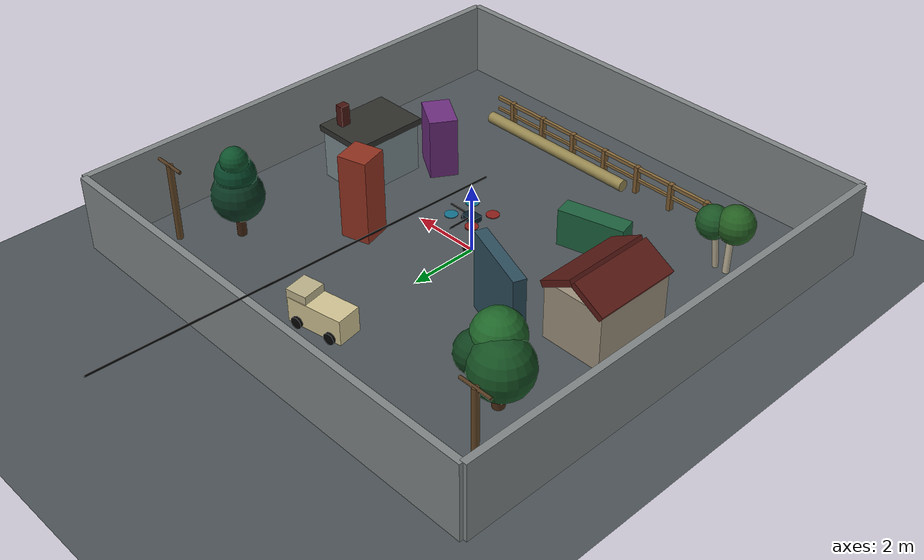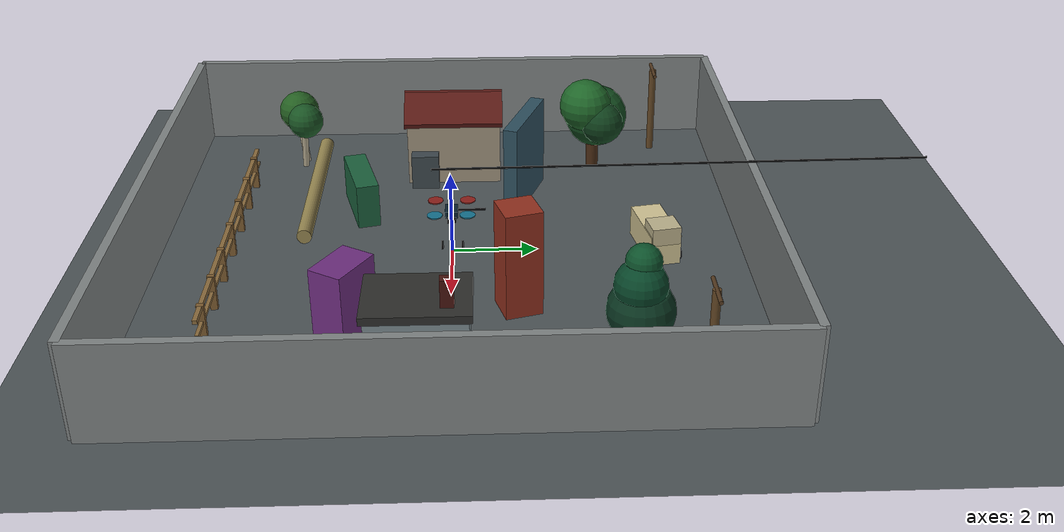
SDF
<?xml version="1.0" ?>
<sdf version="1.8">
  <world name="drone_reconstruction_world">
    <plugin filename="libignition-gazebo-physics-system.so" name="ignition::gazebo::systems::Physics"/>
    <plugin filename="libignition-gazebo-user-commands-system.so" name="ignition::gazebo::systems::UserCommands"/>
    <plugin filename="libignition-gazebo-scene-broadcaster-system.so" name="ignition::gazebo::systems::SceneBroadcaster"/>
    <plugin filename="libignition-gazebo-sensors-system.so" name="ignition::gazebo::systems::Sensors">
      <render_engine>ogre2</render_engine>
    </plugin>

    <gravity>0 0 -9.8</gravity>

    <light name="sun" type="directional">
      <pose>-3 4 10 0 0 0</pose>
      <diffuse>0.85 0.82 0.76 1</diffuse>
      <specular>0.25 0.25 0.25 1</specular>
      <direction>-0.45 0.35 -1</direction>
    </light>

    <model name="floor_grid">
      <static>true</static>
      <link name="link">
        <collision name="collision">
          <geometry>
            <plane>
              <normal>0 0 1</normal>
              <size>28 28</size>
            </plane>
          </geometry>
        </collision>
        <visual name="visual">
          <geometry>
            <plane>
              <normal>0 0 1</normal>
              <size>28 28</size>
            </plane>
          </geometry>
          <material>
            <ambient>0.30 0.33 0.34 1</ambient>
            <diffuse>0.30 0.33 0.34 1</diffuse>
          </material>
        </visual>
      </link>
    </model>

    <model name="mapping_drone_proxy">
      <pose>0 0 0.16 0 0 0</pose>

      <link name="base_link">
        <inertial>
          <mass>4.0</mass>
          <inertia>
            <ixx>0.07</ixx>
            <iyy>0.07</iyy>
            <izz>0.10</izz>
          </inertia>
        </inertial>
        <collision name="ground_proxy_collision">
          <geometry>
            <box>
              <size>0.50 0.36 0.12</size>
            </box>
          </geometry>
        </collision>
        <visual name="flight_controller">
          <pose>0 0 0.90 0 0 0</pose>
          <geometry>
            <box>
              <size>0.42 0.30 0.16</size>
            </box>
          </geometry>
          <material>
            <ambient>0.04 0.13 0.18 1</ambient>
            <diffuse>0.04 0.13 0.18 1</diffuse>
          </material>
        </visual>
        <visual name="front_arm">
          <pose>0.38 0 0.94 0 1.5708 0</pose>
          <geometry>
            <cylinder>
              <radius>0.025</radius>
              <length>0.82</length>
            </cylinder>
          </geometry>
          <material>
            <ambient>0.02 0.02 0.025 1</ambient>
            <diffuse>0.02 0.02 0.025 1</diffuse>
          </material>
        </visual>
        <visual name="side_arm">
          <pose>0 0.38 0.94 1.5708 0 0</pose>
          <geometry>
            <cylinder>
              <radius>0.025</radius>
              <length>0.82</length>
            </cylinder>
          </geometry>
          <material>
            <ambient>0.02 0.02 0.025 1</ambient>
            <diffuse>0.02 0.02 0.025 1</diffuse>
          </material>
        </visual>
        <visual name="front_left_rotor">
          <pose>0.38 0.38 0.99 0 0 0</pose>
          <geometry>
            <cylinder>
              <radius>0.18</radius>
              <length>0.025</length>
            </cylinder>
          </geometry>
          <material>
            <ambient>0.08 0.45 0.56 1</ambient>
            <diffuse>0.08 0.45 0.56 1</diffuse>
          </material>
        </visual>
        <visual name="front_right_rotor">
          <pose>0.38 -0.38 0.99 0 0 0</pose>
          <geometry>
            <cylinder>
              <radius>0.18</radius>
              <length>0.025</length>
            </cylinder>
          </geometry>
          <material>
            <ambient>0.08 0.45 0.56 1</ambient>
            <diffuse>0.08 0.45 0.56 1</diffuse>
          </material>
        </visual>
        <visual name="rear_left_rotor">
          <pose>-0.38 0.38 0.99 0 0 0</pose>
          <geometry>
            <cylinder>
              <radius>0.18</radius>
              <length>0.025</length>
            </cylinder>
          </geometry>
          <material>
            <ambient>0.55 0.12 0.10 1</ambient>
            <diffuse>0.55 0.12 0.10 1</diffuse>
          </material>
        </visual>
        <visual name="rear_right_rotor">
          <pose>-0.38 -0.38 0.99 0 0 0</pose>
          <geometry>
            <cylinder>
              <radius>0.18</radius>
              <length>0.025</length>
            </cylinder>
          </geometry>
          <material>
            <ambient>0.55 0.12 0.10 1</ambient>
            <diffuse>0.55 0.12 0.10 1</diffuse>
          </material>
        </visual>
        <visual name="sensor_pod">
          <pose>0.24 0 0.80 0 0 0</pose>
          <geometry>
            <box>
              <size>0.16 0.20 0.10</size>
            </box>
          </geometry>
          <material>
            <ambient>0.02 0.02 0.02 1</ambient>
            <diffuse>0.02 0.02 0.02 1</diffuse>
          </material>
        </visual>

        <sensor name="mapping_lidar" type="gpu_lidar">
          <pose>0.24 0 0.82 0 0 0</pose>
          <topic>/scan</topic>
          <update_rate>12</update_rate>
          <always_on>true</always_on>
          <visualize>true</visualize>
          <ray>
            <scan>
              <horizontal>
                <samples>540</samples>
                <resolution>1</resolution>
                <min_angle>-2.35619</min_angle>
                <max_angle>2.35619</max_angle>
              </horizontal>
            </scan>
            <range>
              <min>0.12</min>
              <max>10.0</max>
              <resolution>0.01</resolution>
            </range>
          </ray>
        </sensor>
      </link>

      <link name="left_proxy_wheel">
        <pose>0 0.24 0 1.5708 0 0</pose>
        <inertial>
          <mass>0.35</mass>
          <inertia>
            <ixx>0.001</ixx>
            <iyy>0.001</iyy>
            <izz>0.001</izz>
          </inertia>
        </inertial>
        <collision name="collision">
          <geometry>
            <cylinder>
              <radius>0.10</radius>
              <length>0.05</length>
            </cylinder>
          </geometry>
        </collision>
        <visual name="visual">
          <geometry>
            <cylinder>
              <radius>0.10</radius>
              <length>0.05</length>
            </cylinder>
          </geometry>
          <material>
            <ambient>0.015 0.015 0.015 1</ambient>
            <diffuse>0.015 0.015 0.015 1</diffuse>
          </material>
        </visual>
      </link>

      <link name="right_proxy_wheel">
        <pose>0 -0.24 0 1.5708 0 0</pose>
        <inertial>
          <mass>0.35</mass>
          <inertia>
            <ixx>0.001</ixx>
            <iyy>0.001</iyy>
            <izz>0.001</izz>
          </inertia>
        </inertial>
        <collision name="collision">
          <geometry>
            <cylinder>
              <radius>0.10</radius>
              <length>0.05</length>
            </cylinder>
          </geometry>
        </collision>
        <visual name="visual">
          <geometry>
            <cylinder>
              <radius>0.10</radius>
              <length>0.05</length>
            </cylinder>
          </geometry>
          <material>
            <ambient>0.015 0.015 0.015 1</ambient>
            <diffuse>0.015 0.015 0.015 1</diffuse>
          </material>
        </visual>
      </link>

      <joint name="left_proxy_wheel_joint" type="revolute">
        <parent>base_link</parent>
        <child>left_proxy_wheel</child>
        <axis>
          <xyz>0 1 0</xyz>
          <limit>
            <lower>-1e16</lower>
            <upper>1e16</upper>
          </limit>
        </axis>
      </joint>

      <joint name="right_proxy_wheel_joint" type="revolute">
        <parent>base_link</parent>
        <child>right_proxy_wheel</child>
        <axis>
          <xyz>0 1 0</xyz>
          <limit>
            <lower>-1e16</lower>
            <upper>1e16</upper>
          </limit>
        </axis>
      </joint>

      <plugin filename="libignition-gazebo-diff-drive-system.so" name="ignition::gazebo::systems::DiffDrive">
        <left_joint>left_proxy_wheel_joint</left_joint>
        <right_joint>right_proxy_wheel_joint</right_joint>
        <wheel_separation>0.48</wheel_separation>
        <wheel_radius>0.10</wheel_radius>
        <topic>/cmd_vel</topic>
        <odom_topic>/odom</odom_topic>
        <odom_publish_frequency>25</odom_publish_frequency>
        <tf_topic>/tf</tf_topic>
        <frame_id>odom</frame_id>
        <child_frame_id>base_link</child_frame_id>
      </plugin>
    </model>

    <model name="north_boundary">
      <static>true</static>
      <pose>0 7 1.1 0 0 0</pose>
      <link name="link">
        <collision name="collision"><geometry><box><size>14 0.20 2.2</size></box></geometry></collision>
        <visual name="visual">
          <geometry><box><size>14 0.20 2.2</size></box></geometry>
          <material><ambient>0.50 0.52 0.52 1</ambient><diffuse>0.50 0.52 0.52 1</diffuse></material>
        </visual>
      </link>
    </model>

    <model name="south_boundary">
      <static>true</static>
      <pose>0 -7 1.1 0 0 0</pose>
      <link name="link">
        <collision name="collision"><geometry><box><size>14 0.20 2.2</size></box></geometry></collision>
        <visual name="visual">
          <geometry><box><size>14 0.20 2.2</size></box></geometry>
          <material><ambient>0.50 0.52 0.52 1</ambient><diffuse>0.50 0.52 0.52 1</diffuse></material>
        </visual>
      </link>
    </model>

    <model name="east_boundary">
      <static>true</static>
      <pose>7 0 1.1 0 0 0</pose>
      <link name="link">
        <collision name="collision"><geometry><box><size>0.20 14 2.2</size></box></geometry></collision>
        <visual name="visual">
          <geometry><box><size>0.20 14 2.2</size></box></geometry>
          <material><ambient>0.50 0.52 0.52 1</ambient><diffuse>0.50 0.52 0.52 1</diffuse></material>
        </visual>
      </link>
    </model>

    <model name="west_boundary">
      <static>true</static>
      <pose>-7 0 1.1 0 0 0</pose>
      <link name="link">
        <collision name="collision"><geometry><box><size>0.20 14 2.2</size></box></geometry></collision>
        <visual name="visual">
          <geometry><box><size>0.20 14 2.2</size></box></geometry>
          <material><ambient>0.50 0.52 0.52 1</ambient><diffuse>0.50 0.52 0.52 1</diffuse></material>
        </visual>
      </link>
    </model>

    <model name="inspection_tower">
      <static>true</static>
      <pose>2.6 1.5 1.25 0 0 0.28</pose>
      <link name="link">
        <collision name="collision"><geometry><box><size>0.85 0.85 2.5</size></box></geometry></collision>
        <visual name="visual">
          <geometry><box><size>0.85 0.85 2.5</size></box></geometry>
          <material><ambient>0.57 0.19 0.12 1</ambient><diffuse>0.57 0.19 0.12 1</diffuse></material>
        </visual>
      </link>
    </model>

    <model name="damaged_wall_panel">
      <static>true</static>
      <pose>-2.8 1.8 1.15 0 0 -0.35</pose>
      <link name="link">
        <collision name="collision"><geometry><box><size>2.2 0.35 2.3</size></box></geometry></collision>
        <visual name="visual">
          <geometry><box><size>2.2 0.35 2.3</size></box></geometry>
          <material><ambient>0.18 0.31 0.37 1</ambient><diffuse>0.18 0.31 0.37 1</diffuse></material>
        </visual>
      </link>
    </model>

    <model name="low_equipment_rack">
      <static>true</static>
      <pose>-2.2 -2.3 0.55 0 0 0.25</pose>
      <link name="link">
        <collision name="collision"><geometry><box><size>1.9 0.55 1.1</size></box></geometry></collision>
        <visual name="visual">
          <geometry><box><size>1.9 0.55 1.1</size></box></geometry>
          <material><ambient>0.11 0.38 0.24 1</ambient><diffuse>0.11 0.38 0.24 1</diffuse></material>
        </visual>
      </link>
    </model>

    <model name="overhead_pipe">
      <static>true</static>
      <pose>0.0 -3.1 1.75 1.5708 0 1.5708</pose>
      <link name="link">
        <collision name="collision">
          <geometry>
            <cylinder>
              <radius>0.16</radius>
              <length>4.8</length>
            </cylinder>
          </geometry>
        </collision>
        <visual name="visual">
          <geometry>
            <cylinder>
              <radius>0.16</radius>
              <length>4.8</length>
            </cylinder>
          </geometry>
          <material><ambient>0.58 0.52 0.31 1</ambient><diffuse>0.58 0.52 0.31 1</diffuse></material>
        </visual>
      </link>
    </model>

    <model name="reconstruction_target">
      <static>true</static>
      <pose>3.6 -2.2 0.9 0 0 -0.55</pose>
      <link name="link">
        <collision name="collision"><geometry><box><size>1.2 0.80 1.8</size></box></geometry></collision>
        <visual name="visual">
          <geometry><box><size>1.2 0.80 1.8</size></box></geometry>
          <material><ambient>0.43 0.18 0.50 1</ambient><diffuse>0.43 0.18 0.50 1</diffuse></material>
        </visual>
      </link>
    </model>

    <model name="front_yard_maple">
      <static>true</static>
      <pose>-4.7 3.7 0 0 0 0</pose>
      <link name="trunk">
        <pose>0 0 0.55 0 0 0.12</pose>
        <collision name="collision"><geometry><cylinder><radius>0.16</radius><length>1.1</length></cylinder></geometry></collision>
        <visual name="visual">
          <geometry><cylinder><radius>0.16</radius><length>1.1</length></cylinder></geometry>
          <material><ambient>0.29 0.17 0.08 1</ambient><diffuse>0.29 0.17 0.08 1</diffuse></material>
        </visual>
      </link>
      <link name="lower_canopy">
        <pose>-0.18 0.10 1.35 0 0 0</pose>
        <collision name="collision"><geometry><sphere><radius>0.82</radius></sphere></geometry></collision>
        <visual name="visual">
          <geometry><sphere><radius>0.82</radius></sphere></geometry>
          <material><ambient>0.08 0.31 0.13 1</ambient><diffuse>0.08 0.31 0.13 1</diffuse></material>
        </visual>
      </link>
      <link name="upper_canopy">
        <pose>0.24 -0.22 1.82 0 0 0</pose>
        <collision name="collision"><geometry><sphere><radius>0.68</radius></sphere></geometry></collision>
        <visual name="visual">
          <geometry><sphere><radius>0.68</radius></sphere></geometry>
          <material><ambient>0.12 0.40 0.16 1</ambient><diffuse>0.12 0.40 0.16 1</diffuse></material>
        </visual>
      </link>
      <link name="side_canopy">
        <pose>0.52 0.20 1.42 0 0 0</pose>
        <collision name="collision"><geometry><sphere><radius>0.55</radius></sphere></geometry></collision>
        <visual name="visual">
          <geometry><sphere><radius>0.55</radius></sphere></geometry>
          <material><ambient>0.06 0.25 0.11 1</ambient><diffuse>0.06 0.25 0.11 1</diffuse></material>
        </visual>
      </link>
    </model>

    <model name="sidewalk_pine">
      <static>true</static>
      <pose>4.8 3.9 0 0 0 0</pose>
      <link name="trunk">
        <pose>0 0 0.75 0 0 -0.08</pose>
        <collision name="collision"><geometry><cylinder><radius>0.13</radius><length>1.5</length></cylinder></geometry></collision>
        <visual name="visual">
          <geometry><cylinder><radius>0.13</radius><length>1.5</length></cylinder></geometry>
          <material><ambient>0.25 0.14 0.07 1</ambient><diffuse>0.25 0.14 0.07 1</diffuse></material>
        </visual>
      </link>
      <link name="lower_needles">
        <pose>0 0 1.25 0 0 0</pose>
        <collision name="collision"><geometry><sphere><radius>0.72</radius></sphere></geometry></collision>
        <visual name="visual">
          <geometry><sphere><radius>0.72</radius></sphere></geometry>
          <material><ambient>0.04 0.21 0.13 1</ambient><diffuse>0.04 0.21 0.13 1</diffuse></material>
        </visual>
      </link>
      <link name="middle_needles">
        <pose>0.05 -0.03 1.85 0 0 0</pose>
        <collision name="collision"><geometry><sphere><radius>0.56</radius></sphere></geometry></collision>
        <visual name="visual">
          <geometry><sphere><radius>0.56</radius></sphere></geometry>
          <material><ambient>0.03 0.27 0.16 1</ambient><diffuse>0.03 0.27 0.16 1</diffuse></material>
        </visual>
      </link>
      <link name="top_needles">
        <pose>-0.04 0.02 2.34 0 0 0</pose>
        <collision name="collision"><geometry><sphere><radius>0.38</radius></sphere></geometry></collision>
        <visual name="visual">
          <geometry><sphere><radius>0.38</radius></sphere></geometry>
          <material><ambient>0.05 0.32 0.17 1</ambient><diffuse>0.05 0.32 0.17 1</diffuse></material>
        </visual>
      </link>
    </model>

    <model name="corner_birch_cluster">
      <static>true</static>
      <pose>-5.0 -4.1 0 0 0 0</pose>
      <link name="trunk_a">
        <pose>-0.18 0 0.62 0.08 0.03 0</pose>
        <collision name="collision"><geometry><cylinder><radius>0.09</radius><length>1.25</length></cylinder></geometry></collision>
        <visual name="visual"><geometry><cylinder><radius>0.09</radius><length>1.25</length></cylinder></geometry><material><ambient>0.72 0.68 0.58 1</ambient><diffuse>0.72 0.68 0.58 1</diffuse></material></visual>
      </link>
      <link name="trunk_b">
        <pose>0.18 0.08 0.58 -0.05 0.08 0</pose>
        <collision name="collision"><geometry><cylinder><radius>0.08</radius><length>1.15</length></cylinder></geometry></collision>
        <visual name="visual"><geometry><cylinder><radius>0.08</radius><length>1.15</length></cylinder></geometry><material><ambient>0.70 0.66 0.56 1</ambient><diffuse>0.70 0.66 0.56 1</diffuse></material></visual>
      </link>
      <link name="canopy_a">
        <pose>-0.25 -0.06 1.45 0 0 0</pose>
        <collision name="collision"><geometry><sphere><radius>0.52</radius></sphere></geometry></collision>
        <visual name="visual"><geometry><sphere><radius>0.52</radius></sphere></geometry><material><ambient>0.14 0.37 0.13 1</ambient><diffuse>0.14 0.37 0.13 1</diffuse></material></visual>
      </link>
      <link name="canopy_b">
        <pose>0.28 0.16 1.38 0 0 0</pose>
        <collision name="collision"><geometry><sphere><radius>0.46</radius></sphere></geometry></collision>
        <visual name="visual"><geometry><sphere><radius>0.46</radius></sphere></geometry><material><ambient>0.10 0.33 0.14 1</ambient><diffuse>0.10 0.33 0.14 1</diffuse></material></visual>
      </link>
    </model>

    <model name="row_house_west">
      <static>true</static>
      <pose>-4.6 0.0 0 0 0 1.5708</pose>
      <link name="body">
        <pose>0 0 0.85 0 0 0</pose>
        <collision name="collision"><geometry><box><size>2.4 1.8 1.7</size></box></geometry></collision>
        <visual name="visual"><geometry><box><size>2.4 1.8 1.7</size></box></geometry><material><ambient>0.62 0.57 0.49 1</ambient><diffuse>0.62 0.57 0.49 1</diffuse></material></visual>
      </link>
      <link name="roof_a">
        <pose>0 -0.48 1.88 0.52 0 0</pose>
        <collision name="collision"><geometry><box><size>2.55 1.05 0.18</size></box></geometry></collision>
        <visual name="visual"><geometry><box><size>2.55 1.05 0.18</size></box></geometry><material><ambient>0.35 0.10 0.08 1</ambient><diffuse>0.35 0.10 0.08 1</diffuse></material></visual>
      </link>
      <link name="roof_b">
        <pose>0 0.48 1.88 -0.52 0 0</pose>
        <collision name="collision"><geometry><box><size>2.55 1.05 0.18</size></box></geometry></collision>
        <visual name="visual"><geometry><box><size>2.55 1.05 0.18</size></box></geometry><material><ambient>0.35 0.10 0.08 1</ambient><diffuse>0.35 0.10 0.08 1</diffuse></material></visual>
      </link>
      <link name="porch">
        <pose>-0.75 -1.08 0.45 0 0 0</pose>
        <collision name="collision"><geometry><box><size>0.7 0.36 0.9</size></box></geometry></collision>
        <visual name="visual"><geometry><box><size>0.7 0.36 0.9</size></box></geometry><material><ambient>0.24 0.28 0.30 1</ambient><diffuse>0.24 0.28 0.30 1</diffuse></material></visual>
      </link>
    </model>

    <model name="row_house_east">
      <static>true</static>
      <pose>4.7 -0.6 0 0 0 -1.5708</pose>
      <link name="body">
        <pose>0 0 0.72 0 0 0</pose>
        <collision name="collision"><geometry><box><size>2.1 1.55 1.45</size></box></geometry></collision>
        <visual name="visual"><geometry><box><size>2.1 1.55 1.45</size></box></geometry><material><ambient>0.48 0.54 0.56 1</ambient><diffuse>0.48 0.54 0.56 1</diffuse></material></visual>
      </link>
      <link name="flat_roof">
        <pose>0 0 1.56 0 0 0</pose>
        <collision name="collision"><geometry><box><size>2.25 1.7 0.18</size></box></geometry></collision>
        <visual name="visual"><geometry><box><size>2.25 1.7 0.18</size></box></geometry><material><ambient>0.18 0.18 0.17 1</ambient><diffuse>0.18 0.18 0.17 1</diffuse></material></visual>
      </link>
      <link name="chimney">
        <pose>-0.62 0.42 1.92 0 0 0</pose>
        <collision name="collision"><geometry><box><size>0.28 0.24 0.70</size></box></geometry></collision>
        <visual name="visual"><geometry><box><size>0.28 0.24 0.70</size></box></geometry><material><ambient>0.28 0.08 0.06 1</ambient><diffuse>0.28 0.08 0.06 1</diffuse></material></visual>
      </link>
    </model>

    <model name="parked_service_van">
      <static>true</static>
      <pose>0.2 4.8 0 0 0 0.18</pose>
      <link name="body">
        <pose>0 0 0.45 0 0 0</pose>
        <collision name="collision"><geometry><box><size>1.65 0.72 0.72</size></box></geometry></collision>
        <visual name="visual"><geometry><box><size>1.65 0.72 0.72</size></box></geometry><material><ambient>0.82 0.77 0.58 1</ambient><diffuse>0.82 0.77 0.58 1</diffuse></material></visual>
      </link>
      <link name="cab">
        <pose>0.55 0 0.83 0 0 0</pose>
        <collision name="collision"><geometry><box><size>0.62 0.68 0.42</size></box></geometry></collision>
        <visual name="visual"><geometry><box><size>0.62 0.68 0.42</size></box></geometry><material><ambient>0.74 0.70 0.55 1</ambient><diffuse>0.74 0.70 0.55 1</diffuse></material></visual>
      </link>
      <link name="front_wheel">
        <pose>0.52 0.41 0.20 1.5708 0 0</pose>
        <collision name="collision"><geometry><cylinder><radius>0.16</radius><length>0.08</length></cylinder></geometry></collision>
        <visual name="visual"><geometry><cylinder><radius>0.16</radius><length>0.08</length></cylinder></geometry><material><ambient>0.02 0.02 0.02 1</ambient><diffuse>0.02 0.02 0.02 1</diffuse></material></visual>
      </link>
      <link name="rear_wheel">
        <pose>-0.52 0.41 0.20 1.5708 0 0</pose>
        <collision name="collision"><geometry><cylinder><radius>0.16</radius><length>0.08</length></cylinder></geometry></collision>
        <visual name="visual"><geometry><cylinder><radius>0.16</radius><length>0.08</length></cylinder></geometry><material><ambient>0.02 0.02 0.02 1</ambient><diffuse>0.02 0.02 0.02 1</diffuse></material></visual>
      </link>
    </model>

    <model name="backyard_fence">
      <static>true</static>
      <pose>0 -5.2 0 0 0 0</pose>
      <link name="rail_top">
        <pose>0 0 0.78 0 0 0</pose>
        <collision name="collision"><geometry><box><size>8.4 0.10 0.10</size></box></geometry></collision>
        <visual name="visual"><geometry><box><size>8.4 0.10 0.10</size></box></geometry><material><ambient>0.54 0.42 0.24 1</ambient><diffuse>0.54 0.42 0.24 1</diffuse></material></visual>
      </link>
      <link name="rail_mid">
        <pose>0 0 0.42 0 0 0</pose>
        <collision name="collision"><geometry><box><size>8.4 0.08 0.08</size></box></geometry></collision>
        <visual name="visual"><geometry><box><size>8.4 0.08 0.08</size></box></geometry><material><ambient>0.54 0.42 0.24 1</ambient><diffuse>0.54 0.42 0.24 1</diffuse></material></visual>
      </link>
      <link name="post_1"><pose>-3.6 0 0.42 0 0 0</pose><collision name="collision"><geometry><box><size>0.12 0.16 0.84</size></box></geometry></collision><visual name="visual"><geometry><box><size>0.12 0.16 0.84</size></box></geometry><material><ambient>0.49 0.36 0.19 1</ambient><diffuse>0.49 0.36 0.19 1</diffuse></material></visual></link>
      <link name="post_2"><pose>-2.4 0 0.42 0 0 0</pose><collision name="collision"><geometry><box><size>0.12 0.16 0.84</size></box></geometry></collision><visual name="visual"><geometry><box><size>0.12 0.16 0.84</size></box></geometry><material><ambient>0.49 0.36 0.19 1</ambient><diffuse>0.49 0.36 0.19 1</diffuse></material></visual></link>
      <link name="post_3"><pose>-1.2 0 0.42 0 0 0</pose><collision name="collision"><geometry><box><size>0.12 0.16 0.84</size></box></geometry></collision><visual name="visual"><geometry><box><size>0.12 0.16 0.84</size></box></geometry><material><ambient>0.49 0.36 0.19 1</ambient><diffuse>0.49 0.36 0.19 1</diffuse></material></visual></link>
      <link name="post_4"><pose>0 0 0.42 0 0 0</pose><collision name="collision"><geometry><box><size>0.12 0.16 0.84</size></box></geometry></collision><visual name="visual"><geometry><box><size>0.12 0.16 0.84</size></box></geometry><material><ambient>0.49 0.36 0.19 1</ambient><diffuse>0.49 0.36 0.19 1</diffuse></material></visual></link>
      <link name="post_5"><pose>1.2 0 0.42 0 0 0</pose><collision name="collision"><geometry><box><size>0.12 0.16 0.84</size></box></geometry></collision><visual name="visual"><geometry><box><size>0.12 0.16 0.84</size></box></geometry><material><ambient>0.49 0.36 0.19 1</ambient><diffuse>0.49 0.36 0.19 1</diffuse></material></visual></link>
      <link name="post_6"><pose>2.4 0 0.42 0 0 0</pose><collision name="collision"><geometry><box><size>0.12 0.16 0.84</size></box></geometry></collision><visual name="visual"><geometry><box><size>0.12 0.16 0.84</size></box></geometry><material><ambient>0.49 0.36 0.19 1</ambient><diffuse>0.49 0.36 0.19 1</diffuse></material></visual></link>
      <link name="post_7"><pose>3.6 0 0.42 0 0 0</pose><collision name="collision"><geometry><box><size>0.12 0.16 0.84</size></box></geometry></collision><visual name="visual"><geometry><box><size>0.12 0.16 0.84</size></box></geometry><material><ambient>0.49 0.36 0.19 1</ambient><diffuse>0.49 0.36 0.19 1</diffuse></material></visual></link>
    </model>

    <model name="utility_line">
      <static>true</static>
      <pose>0 0 0 0 0 0</pose>
      <link name="pole_a">
        <pose>-5.7 5.4 1.15 0 0 0</pose>
        <collision name="collision"><geometry><cylinder><radius>0.09</radius><length>2.3</length></cylinder></geometry></collision>
        <visual name="visual"><geometry><cylinder><radius>0.09</radius><length>2.3</length></cylinder></geometry><material><ambient>0.38 0.27 0.14 1</ambient><diffuse>0.38 0.27 0.14 1</diffuse></material></visual>
      </link>
      <link name="pole_b">
        <pose>5.8 5.2 1.15 0 0 0</pose>
        <collision name="collision"><geometry><cylinder><radius>0.09</radius><length>2.3</length></cylinder></geometry></collision>
        <visual name="visual"><geometry><cylinder><radius>0.09</radius><length>2.3</length></cylinder></geometry><material><ambient>0.38 0.27 0.14 1</ambient><diffuse>0.38 0.27 0.14 1</diffuse></material></visual>
      </link>
      <link name="crossbar_a">
        <pose>-5.7 5.4 2.28 0 1.5708 0</pose>
        <collision name="collision"><geometry><cylinder><radius>0.045</radius><length>0.95</length></cylinder></geometry></collision>
        <visual name="visual"><geometry><cylinder><radius>0.045</radius><length>0.95</length></cylinder></geometry><material><ambient>0.32 0.22 0.12 1</ambient><diffuse>0.32 0.22 0.12 1</diffuse></material></visual>
      </link>
      <link name="crossbar_b">
        <pose>5.8 5.2 2.28 0 1.5708 0</pose>
        <collision name="collision"><geometry><cylinder><radius>0.045</radius><length>0.95</length></cylinder></geometry></collision>
        <visual name="visual"><geometry><cylinder><radius>0.045</radius><length>0.95</length></cylinder></geometry><material><ambient>0.32 0.22 0.12 1</ambient><diffuse>0.32 0.22 0.12 1</diffuse></material></visual>
      </link>
      <link name="wire">
        <pose>0.05 5.3 2.23 0 1.553 1.553</pose>
        <collision name="collision"><geometry><cylinder><radius>0.025</radius><length>11.5</length></cylinder></geometry></collision>
        <visual name="visual"><geometry><cylinder><radius>0.025</radius><length>11.5</length></cylinder></geometry><material><ambient>0.03 0.03 0.03 1</ambient><diffuse>0.03 0.03 0.03 1</diffuse></material></visual>
      </link>
    </model>
  </world>
</sdf>
